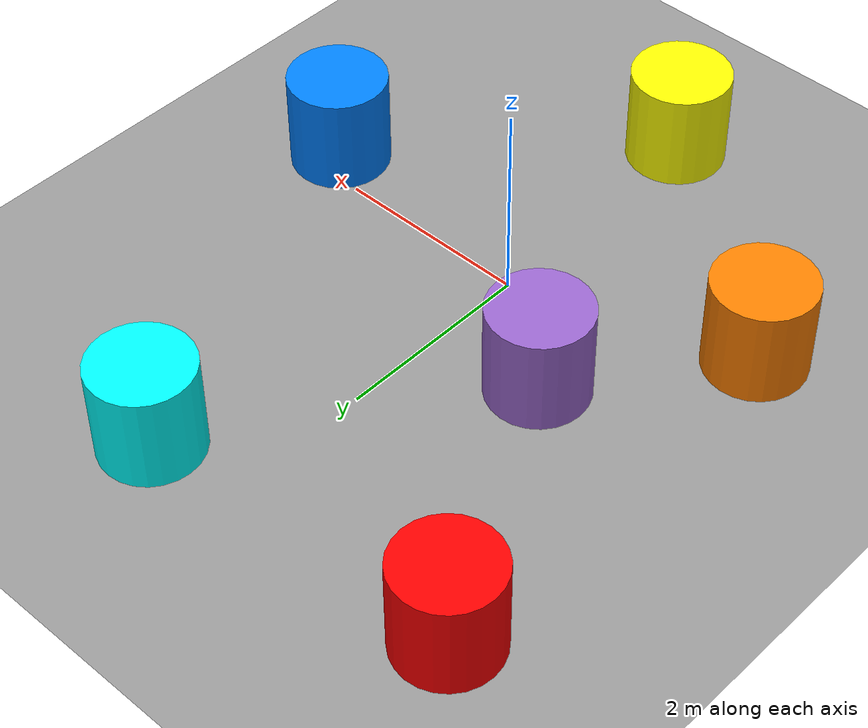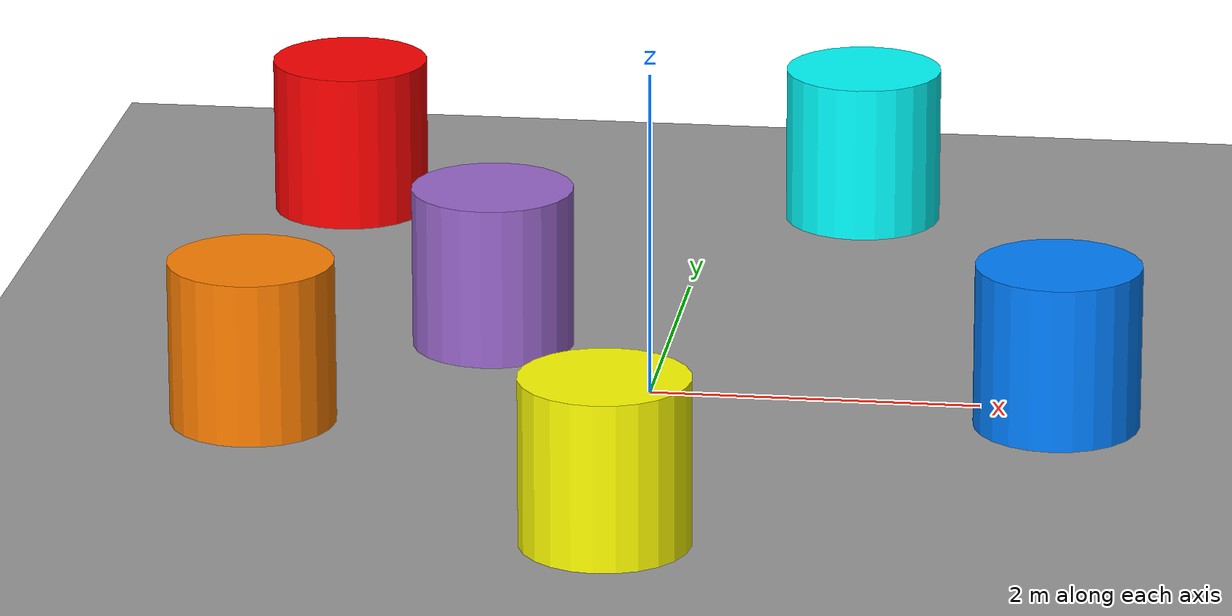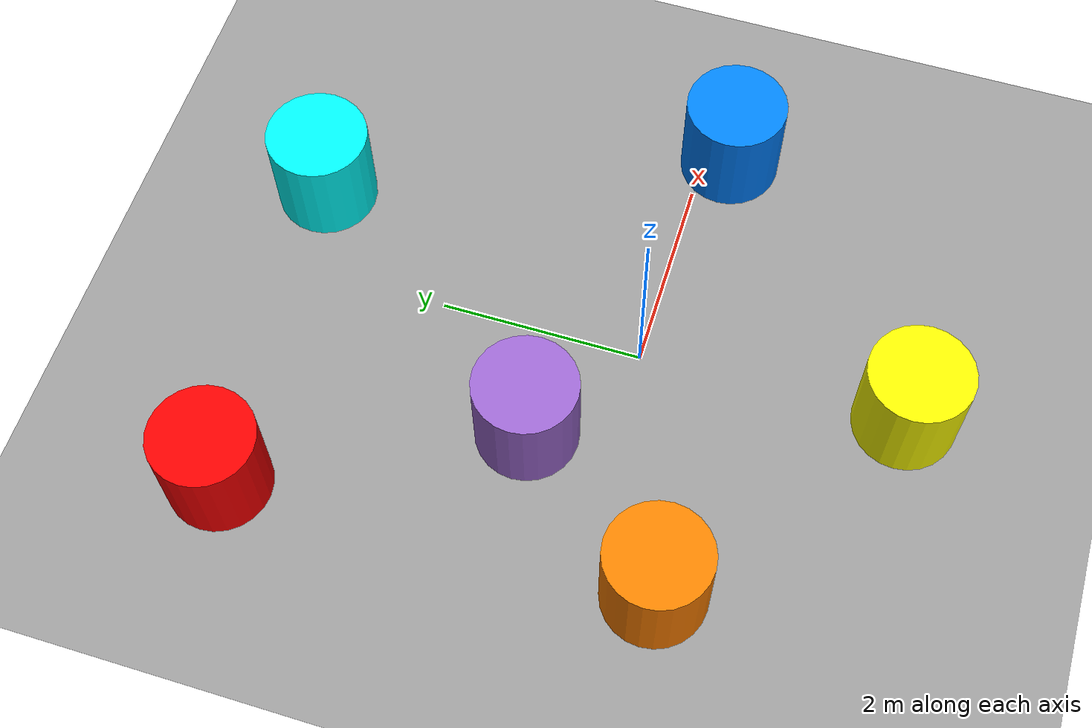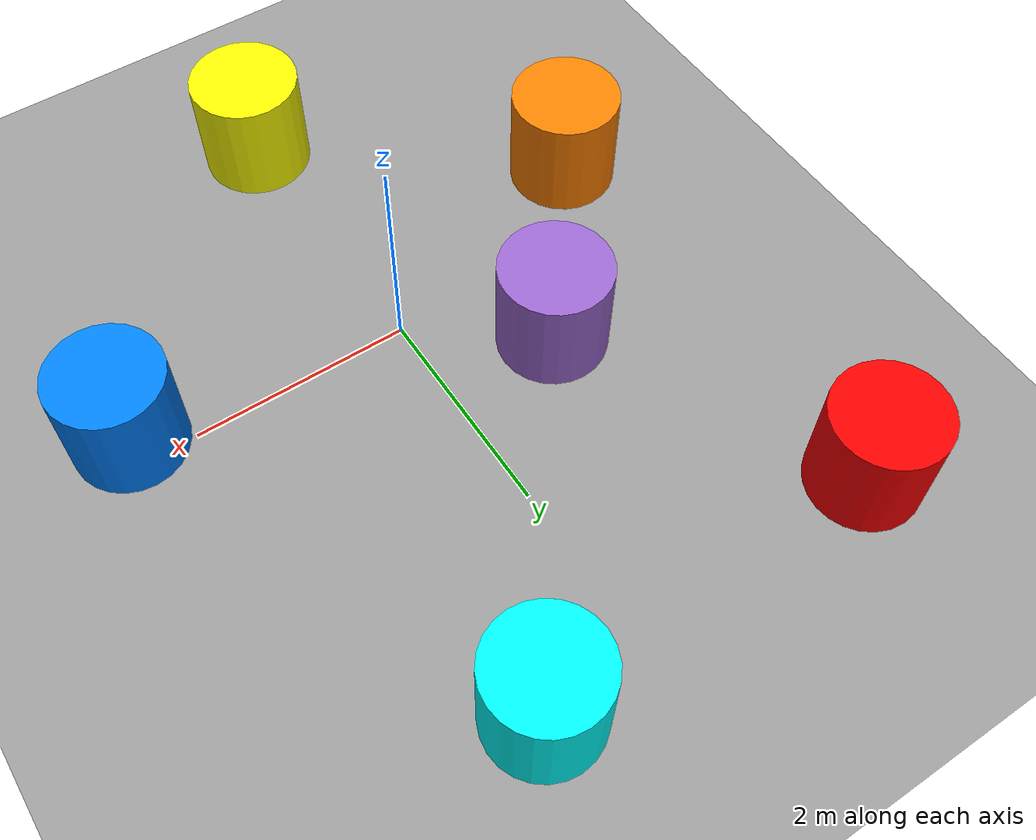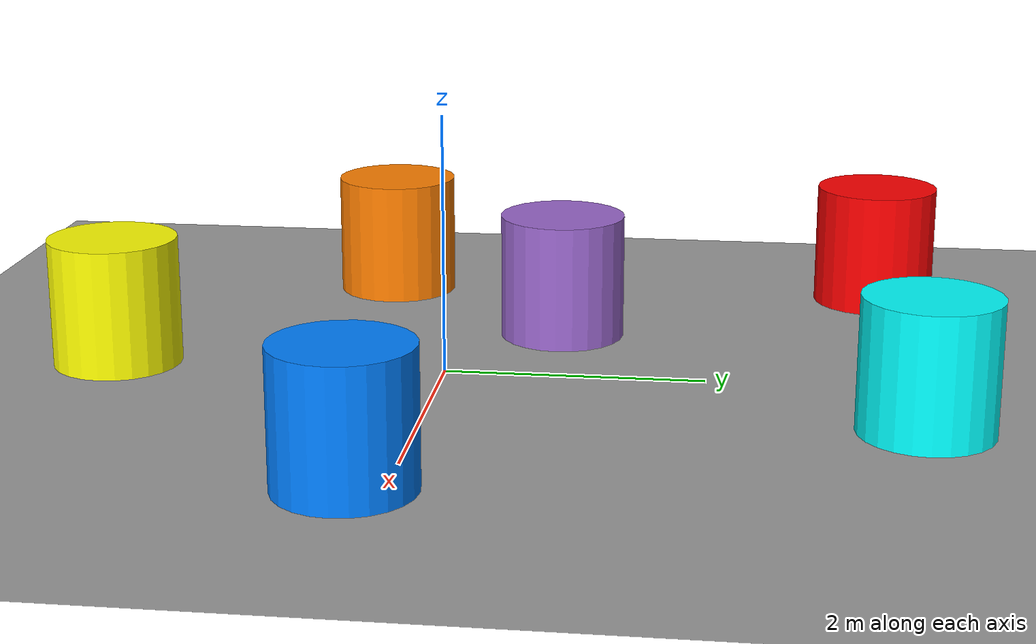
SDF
<?xml version="1.0" ?>
<sdf version="1.8">
  <world name="default">

    <!-- Physics -->
    <physics name="1ms" type="ignored">
      <max_step_size>0.001</max_step_size>
      <real_time_factor>1.0</real_time_factor>
    </physics>

    <!-- Core systems -->
    <plugin filename="gz-sim-physics-system"           name="gz::sim::systems::Physics"/>
    <plugin filename="gz-sim-user-commands-system"     name="gz::sim::systems::UserCommands"/>
    <plugin filename="gz-sim-scene-broadcaster-system" name="gz::sim::systems::SceneBroadcaster"/>
    <plugin filename="gz-sim-sensors-system"           name="gz::sim::systems::Sensors">
      <render_engine>ogre2</render_engine>
    </plugin>

    <!-- Sun light -->
    <light type="directional" name="sun">
      <cast_shadows>true</cast_shadows>
      <pose>0 0 10 0 0 0</pose>
      <diffuse>0.8 0.8 0.8 1</diffuse>
      <specular>0.2 0.2 0.2 1</specular>
      <direction>-0.5 0.1 -0.9</direction>
    </light>

    <!-- Ground -->
    <model name="ground_plane">
      <static>true</static>
      <link name="link">
        <collision name="collision">
          <geometry>
            <plane>
              <normal>0 0 1</normal>
              <size>100 100</size>
            </plane>
          </geometry>
        </collision>
        <visual name="visual">
          <geometry>
            <plane>
              <normal>0 0 1</normal>
              <size>100 100</size>
            </plane>
          </geometry>
          <material>
            <ambient>0.6 0.6 0.6 1</ambient>
            <diffuse>0.6 0.6 0.6 1</diffuse>
          </material>
        </visual>
      </link>
    </model>

    <!-- Cylinders -->

    <model name="cyl_0">
      <static>true</static>
      <pose>-1.077295 0.8 0.5 0 0 0</pose>
      <link name="link">
        <collision name="col">
          <geometry>
            <cylinder>
              <radius>0.5</radius>
              <length>1</length>
            </cylinder>
          </geometry>
        </collision>
        <visual name="vis">
          <geometry>
            <cylinder>
              <radius>0.5</radius>
              <length>1</length>
            </cylinder>
          </geometry>
          <material>
            <ambient>0.6 0.4 0.8 1</ambient>
            <diffuse>0.6 0.4 0.8 1</diffuse>
          </material>
        </visual>
      </link>
    </model>

    <model name="cyl_1">
      <static>true</static>
      <pose>-2.29225 -0.780573 0.5 0 0 0</pose>
      <link name="link">
        <collision name="col">
          <geometry>
            <cylinder>
              <radius>0.5</radius>
              <length>1</length>
            </cylinder>
          </geometry>
        </collision>
        <visual name="vis">
          <geometry>
            <cylinder>
              <radius>0.5</radius>
              <length>1</length>
            </cylinder>
          </geometry>
          <material>
            <ambient>1.0 0.5 0.0 1</ambient>
            <diffuse>1.0 0.5 0.0 1</diffuse>
          </material>
        </visual>
      </link>
    </model>

    <model name="cyl_2">
      <static>true</static>
      <pose>0.071628 -2.58063 0.5 0 0 0</pose>
      <link name="link">
        <collision name="col">
          <geometry>
            <cylinder>
              <radius>0.5</radius>
              <length>1</length>
            </cylinder>
          </geometry>
        </collision>
        <visual name="vis">
          <geometry>
            <cylinder>
              <radius>0.5</radius>
              <length>1</length>
            </cylinder>
          </geometry>
          <material>
            <ambient>1.0 1.0 0.0 1</ambient>
            <diffuse>1.0 1.0 0.0 1</diffuse>
          </material>
        </visual>
      </link>
    </model>

    <model name="cyl_3">
      <static>true</static>
      <pose>2.47728 -0.262102 0.5 0 0 0</pose>
      <link name="link">
        <collision name="col">
          <geometry>
            <cylinder>
              <radius>0.5</radius>
              <length>1</length>
            </cylinder>
          </geometry>
        </collision>
        <visual name="vis">
          <geometry>
            <cylinder>
              <radius>0.5</radius>
              <length>1</length>
            </cylinder>
          </geometry>
          <material>
            <ambient>0.0 0.5 1.0 1</ambient>
            <diffuse>0.0 0.5 1.0 1</diffuse>
          </material>
        </visual>
      </link>
    </model>

    <model name="cyl_4">
      <static>true</static>
      <pose>-2.39941 3.37612 0.5 0 0 0</pose>
      <link name="link">
        <collision name="col">
          <geometry>
            <cylinder>
              <radius>0.5</radius>
              <length>1</length>
            </cylinder>
          </geometry>
        </collision>
        <visual name="vis">
          <geometry>
            <cylinder>
              <radius>0.5</radius>
              <length>1</length>
            </cylinder>
          </geometry>
          <material>
            <ambient>1.0 0.0 0.0 1</ambient>
            <diffuse>1.0 0.0 0.0 1</diffuse>
          </material>
        </visual>
      </link>
    </model>

    <model name="cyl_5">
      <static>true</static>
      <pose>0.933695 3.57926 0.5 0 0 0</pose>
      <link name="link">
        <collision name="col">
          <geometry>
            <cylinder>
              <radius>0.5</radius>
              <length>1</length>
            </cylinder>
          </geometry>
        </collision>
        <visual name="vis">
          <geometry>
            <cylinder>
              <radius>0.5</radius>
              <length>1</length>
            </cylinder>
          </geometry>
          <material>
            <ambient>0.0 1.0 1.0 1</ambient>
            <diffuse>0.0 1.0 1.0 1</diffuse>
          </material>
        </visual>
      </link>
    </model>

  </world>
</sdf>
